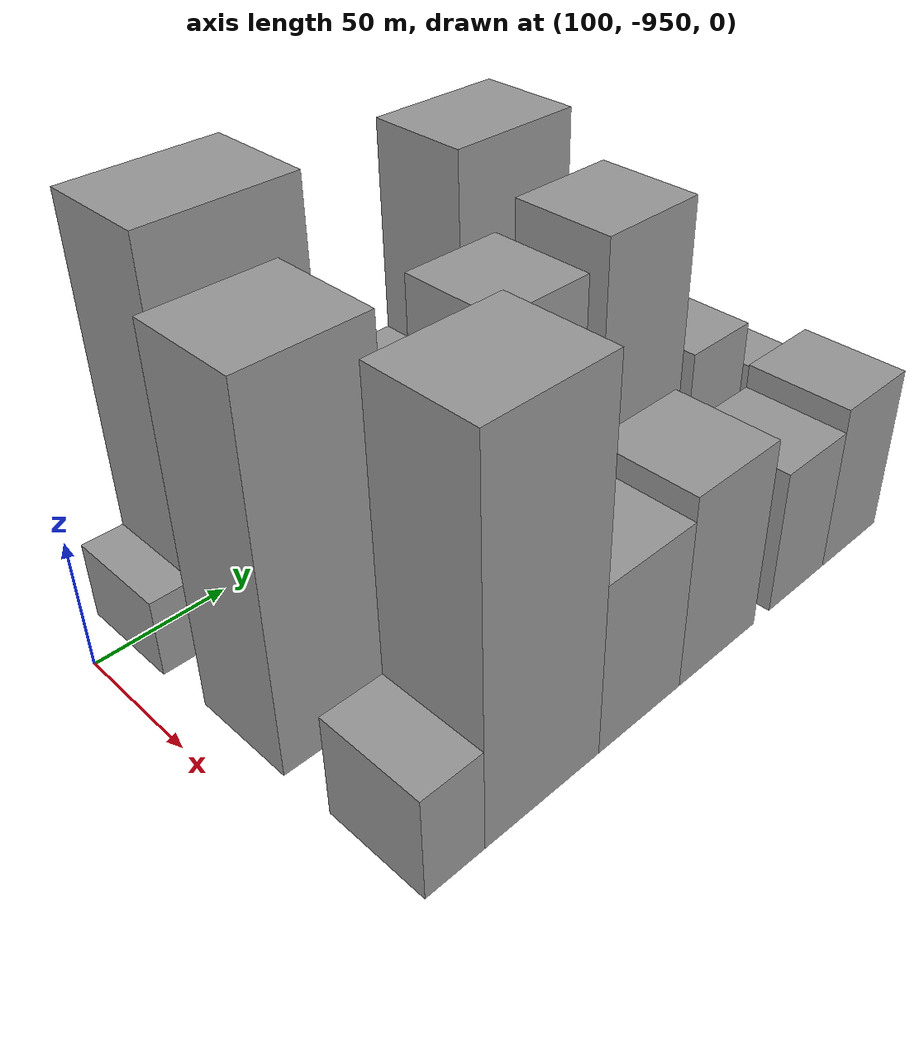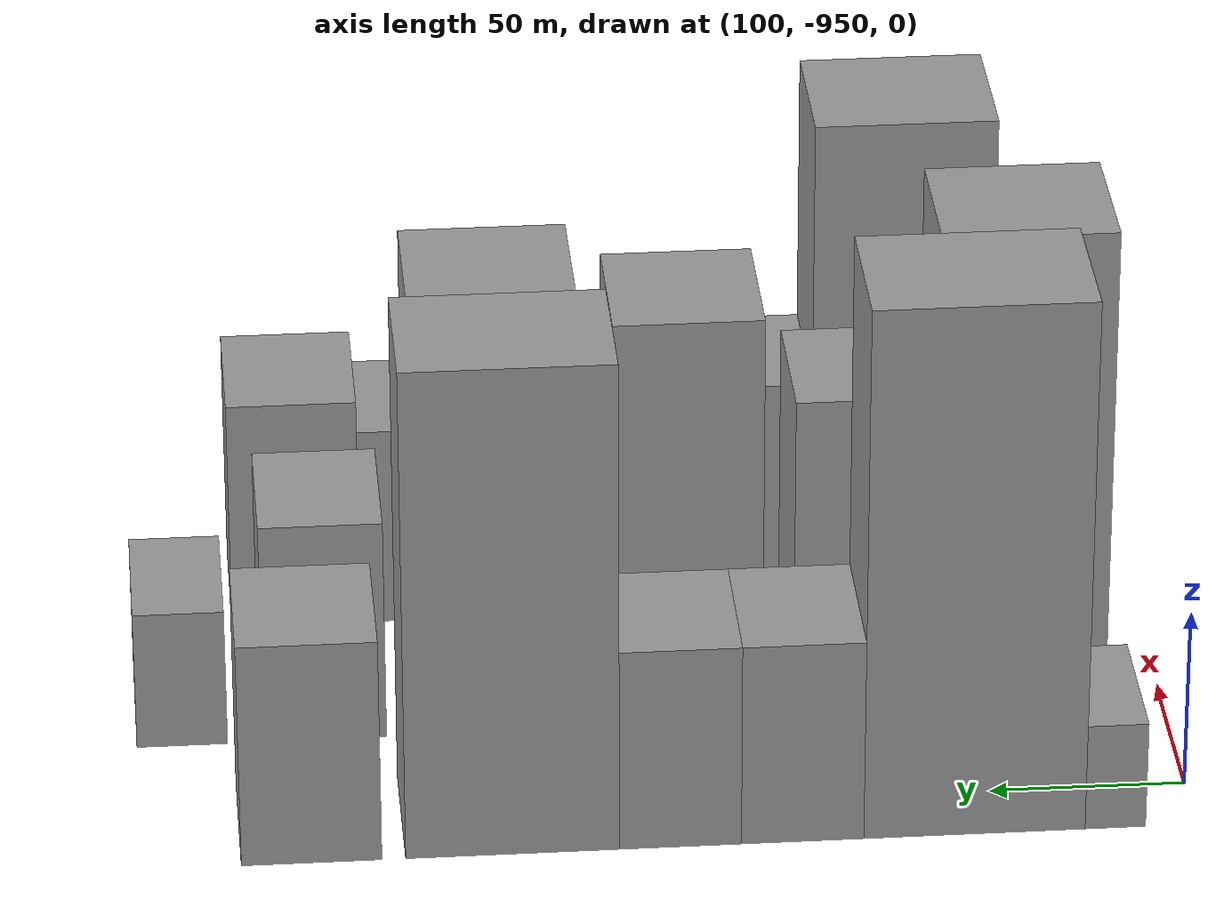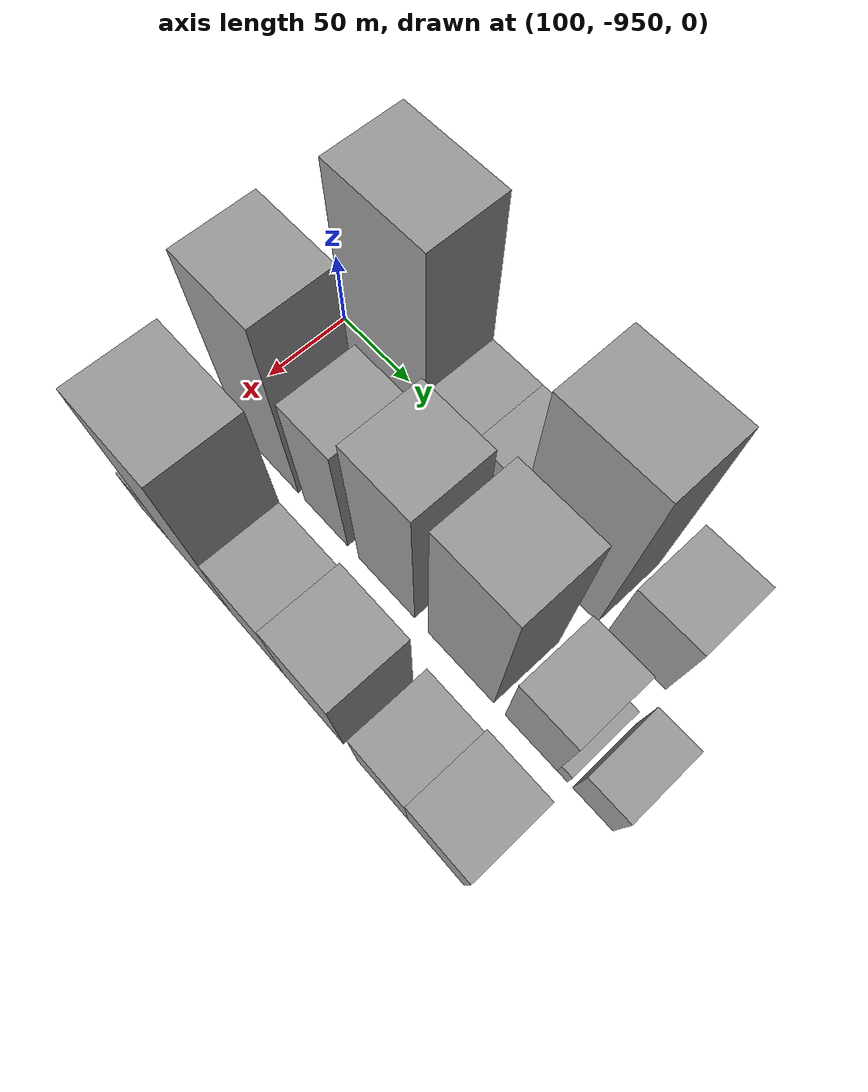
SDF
<sdf version="1.6">
 <world name="default">
  <model name="building_1">
   <static>1</static>
   <pose>100.0000 -929.3016 0 0.000000 0.000000 0.000000</pose>
   <link name="link">
    <pose>0 0 15.00 0 0 0</pose>
    <collision name="collision"><geometry><box><size>40.0000 15.3967 30.0000</size></box></geometry></collision>
    <visual name="visual">
     <cast_shadows>0</cast_shadows>
     <geometry><box><size>40.0000 15.3967 30.0000</size></box></geometry>
     <material>
      <script>
       <uri>model://grey_wall/materials/scripts</uri>
       <uri>model://grey_wall/materials/textures</uri>
       <name>vrc/grey_wall</name>
      </script>
     </material>
    </visual>
   </link>
  </model>
  <model name="building_2">
   <static>1</static>
   <pose>100.0000 -893.4922 0 0.000000 0.000000 0.000000</pose>
   <link name="link">
    <pose>0 0 75.00 0 0 0</pose>
    <collision name="collision"><geometry><box><size>40.0000 56.2221 150.0000</size></box></geometry></collision>
    <visual name="visual">
     <cast_shadows>0</cast_shadows>
     <geometry><box><size>40.0000 56.2221 150.0000</size></box></geometry>
     <material>
      <script>
       <uri>model://grey_wall/materials/scripts</uri>
       <uri>model://grey_wall/materials/textures</uri>
       <name>vrc/grey_wall</name>
      </script>
     </material>
    </visual>
   </link>
  </model>
  <model name="building_3">
   <static>1</static>
   <pose>100.0000 -849.8862 0 0.000000 0.000000 0.000000</pose>
   <link name="link">
    <pose>0 0 28.50 0 0 0</pose>
    <collision name="collision"><geometry><box><size>40.0000 30.9899 57.0000</size></box></geometry></collision>
    <visual name="visual">
     <cast_shadows>0</cast_shadows>
     <geometry><box><size>40.0000 30.9899 57.0000</size></box></geometry>
     <material>
      <script>
       <uri>model://grey_wall/materials/scripts</uri>
       <uri>model://grey_wall/materials/textures</uri>
       <name>vrc/grey_wall</name>
      </script>
     </material>
    </visual>
   </link>
  </model>
  <model name="building_4">
   <static>1</static>
   <pose>100.0000 -818.9883 0 0.000000 0.000000 0.000000</pose>
   <link name="link">
    <pose>0 0 28.50 0 0 0</pose>
    <collision name="collision"><geometry><box><size>40.0000 30.8057 57.0000</size></box></geometry></collision>
    <visual name="visual">
     <cast_shadows>0</cast_shadows>
     <geometry><box><size>40.0000 30.8057 57.0000</size></box></geometry>
     <material>
      <script>
       <uri>model://grey_wall/materials/scripts</uri>
       <uri>model://grey_wall/materials/textures</uri>
       <name>vrc/grey_wall</name>
      </script>
     </material>
    </visual>
   </link>
  </model>
  <model name="building_5">
   <static>1</static>
   <pose>100.0000 -776.6667 0 0.000000 0.000000 0.000000</pose>
   <link name="link">
    <pose>0 0 69.00 0 0 0</pose>
    <collision name="collision"><geometry><box><size>40.0000 53.8375 138.0000</size></box></geometry></collision>
    <visual name="visual">
     <cast_shadows>0</cast_shadows>
     <geometry><box><size>40.0000 53.8375 138.0000</size></box></geometry>
     <material>
      <script>
       <uri>model://grey_wall/materials/scripts</uri>
       <uri>model://grey_wall/materials/textures</uri>
       <name>vrc/grey_wall</name>
      </script>
     </material>
    </visual>
   </link>
  </model>
  <model name="building_6">
   <static>1</static>
   <pose>100.0000 -726.1244 0 0.000000 0.000000 0.000000</pose>
   <link name="link">
    <pose>0 0 31.50 0 0 0</pose>
    <collision name="collision"><geometry><box><size>40.0000 35.2472 63.0000</size></box></geometry></collision>
    <visual name="visual">
     <cast_shadows>0</cast_shadows>
     <geometry><box><size>40.0000 35.2472 63.0000</size></box></geometry>
     <material>
      <script>
       <uri>model://grey_wall/materials/scripts</uri>
       <uri>model://grey_wall/materials/textures</uri>
       <name>vrc/grey_wall</name>
      </script>
     </material>
    </visual>
   </link>
  </model>
  <model name="building_52">
   <static>1</static>
   <pose>160.0000 -912.4431 0 0.000000 0.000000 0.000000</pose>
   <link name="link">
    <pose>0 0 69.00 0 0 0</pose>
    <collision name="collision"><geometry><box><size>40.0000 45.1138 138.0000</size></box></geometry></collision>
    <visual name="visual">
     <cast_shadows>0</cast_shadows>
     <geometry><box><size>40.0000 45.1138 138.0000</size></box></geometry>
     <material>
      <script>
       <uri>model://grey_wall/materials/scripts</uri>
       <uri>model://grey_wall/materials/textures</uri>
       <name>vrc/grey_wall</name>
      </script>
     </material>
    </visual>
   </link>
  </model>
  <model name="building_53">
   <static>1</static>
   <pose>160.0000 -869.1691 0 0.000000 0.000000 0.000000</pose>
   <link name="link">
    <pose>0 0 46.50 0 0 0</pose>
    <collision name="collision"><geometry><box><size>40.0000 31.4341 93.0000</size></box></geometry></collision>
    <visual name="visual">
     <cast_shadows>0</cast_shadows>
     <geometry><box><size>40.0000 31.4341 93.0000</size></box></geometry>
     <material>
      <script>
       <uri>model://grey_wall/materials/scripts</uri>
       <uri>model://grey_wall/materials/textures</uri>
       <name>vrc/grey_wall</name>
      </script>
     </material>
    </visual>
   </link>
  </model>
  <model name="building_54">
   <static>1</static>
   <pose>160.0000 -826.1210 0 0.000000 0.000000 0.000000</pose>
   <link name="link">
    <pose>0 0 58.50 0 0 0</pose>
    <collision name="collision"><geometry><box><size>40.0000 38.6621 117.0000</size></box></geometry></collision>
    <visual name="visual">
     <cast_shadows>0</cast_shadows>
     <geometry><box><size>40.0000 38.6621 117.0000</size></box></geometry>
     <material>
      <script>
       <uri>model://grey_wall/materials/scripts</uri>
       <uri>model://grey_wall/materials/textures</uri>
       <name>vrc/grey_wall</name>
      </script>
     </material>
    </visual>
   </link>
  </model>
  <model name="building_55">
   <static>1</static>
   <pose>160.0000 -776.3998 0 0.000000 0.000000 0.000000</pose>
   <link name="link">
    <pose>0 0 63.00 0 0 0</pose>
    <collision name="collision"><geometry><box><size>40.0000 42.7803 126.0000</size></box></geometry></collision>
    <visual name="visual">
     <cast_shadows>0</cast_shadows>
     <geometry><box><size>40.0000 42.7803 126.0000</size></box></geometry>
     <material>
      <script>
       <uri>model://grey_wall/materials/scripts</uri>
       <uri>model://grey_wall/materials/textures</uri>
       <name>vrc/grey_wall</name>
      </script>
     </material>
    </visual>
   </link>
  </model>
  <model name="building_56">
   <static>1</static>
   <pose>160.0000 -732.1284 0 0.000000 0.000000 0.000000</pose>
   <link name="link">
    <pose>0 0 31.50 0 0 0</pose>
    <collision name="collision"><geometry><box><size>40.0000 31.7627 63.0000</size></box></geometry></collision>
    <visual name="visual">
     <cast_shadows>0</cast_shadows>
     <geometry><box><size>40.0000 31.7627 63.0000</size></box></geometry>
     <material>
      <script>
       <uri>model://grey_wall/materials/scripts</uri>
       <uri>model://grey_wall/materials/textures</uri>
       <name>vrc/grey_wall</name>
      </script>
     </material>
    </visual>
   </link>
  </model>
  <model name="building_57">
   <static>1</static>
   <pose>160.0000 -713.1230 0 0.000000 0.000000 0.000000</pose>
   <link name="link">
    <pose>0 0 7.50 0 0 0</pose>
    <collision name="collision"><geometry><box><size>40.0000 6.2481 15.0000</size></box></geometry></collision>
    <visual name="visual">
     <cast_shadows>0</cast_shadows>
     <geometry><box><size>40.0000 6.2481 15.0000</size></box></geometry>
     <material>
      <script>
       <uri>model://grey_wall/materials/scripts</uri>
       <uri>model://grey_wall/materials/textures</uri>
       <name>vrc/grey_wall</name>
      </script>
     </material>
    </visual>
   </link>
  </model>
  <model name="building_58">
   <static>1</static>
   <pose>160.0000 -695.3463 0 0.000000 0.000000 0.000000</pose>
   <link name="link">
    <pose>0 0 19.50 0 0 0</pose>
    <collision name="collision"><geometry><box><size>40.0000 23.3052 39.0000</size></box></geometry></collision>
    <visual name="visual">
     <cast_shadows>0</cast_shadows>
     <geometry><box><size>40.0000 23.3052 39.0000</size></box></geometry>
     <material>
      <script>
       <uri>model://grey_wall/materials/scripts</uri>
       <uri>model://grey_wall/materials/textures</uri>
       <name>vrc/grey_wall</name>
      </script>
     </material>
    </visual>
   </link>
  </model>
  <model name="building_107">
   <static>1</static>
   <pose>220.0000 -922.7715 0 0.000000 0.000000 0.000000</pose>
   <link name="link">
    <pose>0 0 19.50 0 0 0</pose>
    <collision name="collision"><geometry><box><size>40.0000 22.4570 39.0000</size></box></geometry></collision>
    <visual name="visual">
     <cast_shadows>0</cast_shadows>
     <geometry><box><size>40.0000 22.4570 39.0000</size></box></geometry>
     <material>
      <script>
       <uri>model://grey_wall/materials/scripts</uri>
       <uri>model://grey_wall/materials/textures</uri>
       <name>vrc/grey_wall</name>
      </script>
     </material>
    </visual>
   </link>
  </model>
  <model name="building_108">
   <static>1</static>
   <pose>220.0000 -887.7573 0 0.000000 0.000000 0.000000</pose>
   <link name="link">
    <pose>0 0 70.50 0 0 0</pose>
    <collision name="collision"><geometry><box><size>40.0000 47.5714 141.0000</size></box></geometry></collision>
    <visual name="visual">
     <cast_shadows>0</cast_shadows>
     <geometry><box><size>40.0000 47.5714 141.0000</size></box></geometry>
     <material>
      <script>
       <uri>model://grey_wall/materials/scripts</uri>
       <uri>model://grey_wall/materials/textures</uri>
       <name>vrc/grey_wall</name>
      </script>
     </material>
    </visual>
   </link>
  </model>
  <model name="building_109">
   <static>1</static>
   <pose>220.0000 -844.7055 0 0.000000 0.000000 0.000000</pose>
   <link name="link">
    <pose>0 0 33.00 0 0 0</pose>
    <collision name="collision"><geometry><box><size>40.0000 38.5321 66.0000</size></box></geometry></collision>
    <visual name="visual">
     <cast_shadows>0</cast_shadows>
     <geometry><box><size>40.0000 38.5321 66.0000</size></box></geometry>
     <material>
      <script>
       <uri>model://grey_wall/materials/scripts</uri>
       <uri>model://grey_wall/materials/textures</uri>
       <name>vrc/grey_wall</name>
      </script>
     </material>
    </visual>
   </link>
  </model>
  <model name="building_110">
   <static>1</static>
   <pose>220.0000 -805.4856 0 0.000000 0.000000 0.000000</pose>
   <link name="link">
    <pose>0 0 37.50 0 0 0</pose>
    <collision name="collision"><geometry><box><size>40.0000 39.9078 75.0000</size></box></geometry></collision>
    <visual name="visual">
     <cast_shadows>0</cast_shadows>
     <geometry><box><size>40.0000 39.9078 75.0000</size></box></geometry>
     <material>
      <script>
       <uri>model://grey_wall/materials/scripts</uri>
       <uri>model://grey_wall/materials/textures</uri>
       <name>vrc/grey_wall</name>
      </script>
     </material>
    </visual>
   </link>
  </model>
  <model name="building_111">
   <static>1</static>
   <pose>220.0000 -760.3452 0 0.000000 0.000000 0.000000</pose>
   <link name="link">
    <pose>0 0 28.50 0 0 0</pose>
    <collision name="collision"><geometry><box><size>40.0000 32.3730 57.0000</size></box></geometry></collision>
    <visual name="visual">
     <cast_shadows>0</cast_shadows>
     <geometry><box><size>40.0000 32.3730 57.0000</size></box></geometry>
     <material>
      <script>
       <uri>model://grey_wall/materials/scripts</uri>
       <uri>model://grey_wall/materials/textures</uri>
       <name>vrc/grey_wall</name>
      </script>
     </material>
    </visual>
   </link>
  </model>
  <model name="building_112">
   <static>1</static>
   <pose>220.0000 -727.1563 0 0.000000 0.000000 0.000000</pose>
   <link name="link">
    <pose>0 0 33.00 0 0 0</pose>
    <collision name="collision"><geometry><box><size>40.0000 34.0048 66.0000</size></box></geometry></collision>
    <visual name="visual">
     <cast_shadows>0</cast_shadows>
     <geometry><box><size>40.0000 34.0048 66.0000</size></box></geometry>
     <material>
      <script>
       <uri>model://grey_wall/materials/scripts</uri>
       <uri>model://grey_wall/materials/textures</uri>
       <name>vrc/grey_wall</name>
      </script>
     </material>
    </visual>
   </link>
  </model>
 </world>
</sdf>
